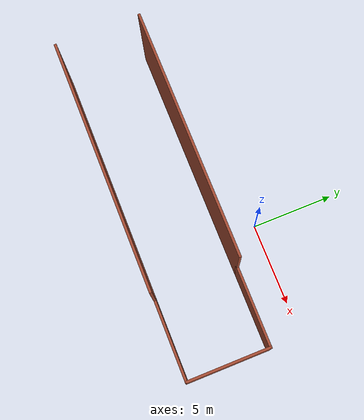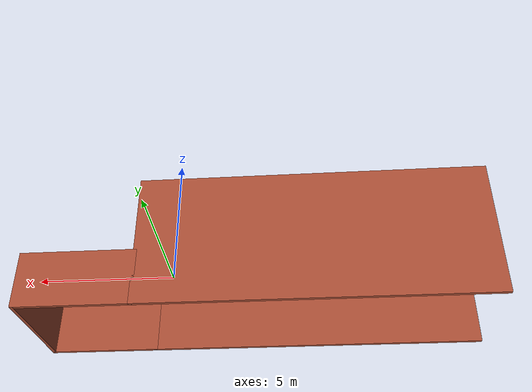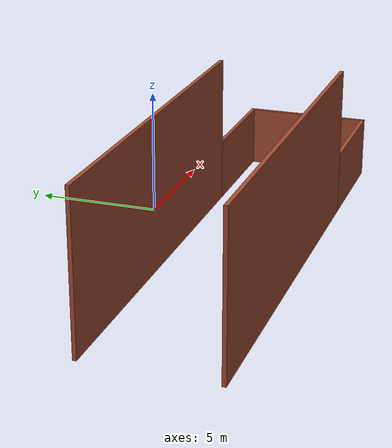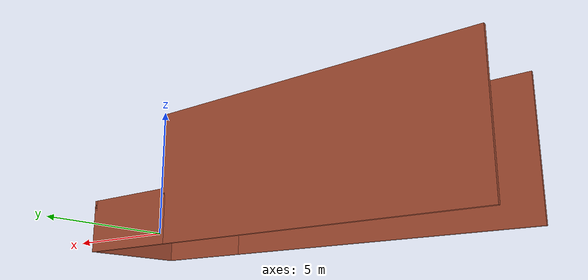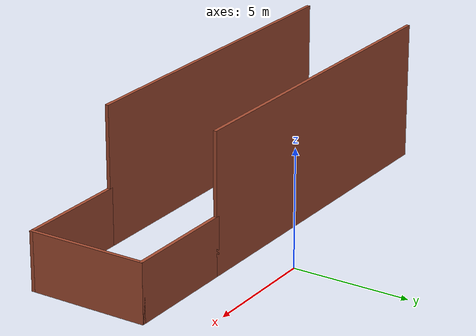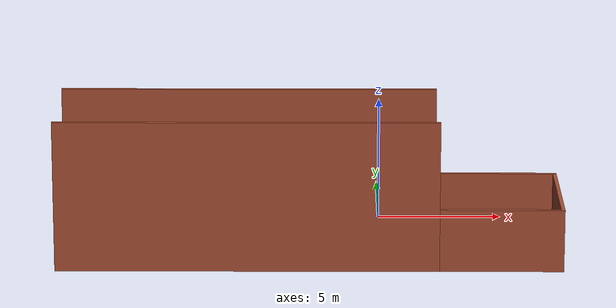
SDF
<?xml version='1.0'?>
<sdf version='1.6'>
  <model name='walls_flipkart'>
    <pose frame=''>-2.795 -4.644 0 0 -0 0</pose>
    <link name='Wall_1'>
      <collision name='Wall_1_Collision'>
        <geometry>
          <box>
            <size>15 0.15 6</size>
          </box>
        </geometry>
        <pose frame=''>0 0 3 0 -0 0</pose>
      </collision>
      <visual name='Wall_1_Visual'>
        <pose frame=''>0 0 3 0 -0 0</pose>
        <geometry>
          <box>
            <size>15 0.15 6</size>
          </box>
        </geometry>
        <material>
          <script>
            <uri>file://media/materials/scripts/gazebo.material</uri>
            <name>Gazebo/Bricks</name>
          </script>
          <ambient>1 1 1 1</ambient>
        </material>
        <meta>
          <layer>0</layer>
        </meta>
      </visual>
      <pose frame=''>-2.425 2.505 0 0 -0 0</pose>
    </link>
    <link name='Wall_12'>
      <collision name='Wall_12_Collision'>
        <geometry>
          <box>
            <size>5.16 0.15 2.5</size>
          </box>
        </geometry>
        <pose frame=''>0 0 1.25 0 -0 0</pose>
      </collision>
      <visual name='Wall_12_Visual'>
        <pose frame=''>0 0 1.25 0 -0 0</pose>
        <geometry>
          <box>
            <size>5.16 0.15 2.5</size>
          </box>
        </geometry>
        <material>
          <script>
            <uri>file://media/materials/scripts/gazebo.material</uri>
            <name>Gazebo/Bricks</name>
          </script>
          <ambient>1 1 1 1</ambient>
        </material>
        <meta>
          <layer>0</layer>
        </meta>
      </visual>
      <pose frame=''>9.85 -0 0 0 -0 -1.5708</pose>
    </link>
    <link name='Wall_14'>
      <collision name='Wall_14_Collision'>
        <geometry>
          <box>
            <size>5 0.15 2.5</size>
          </box>
        </geometry>
        <pose frame=''>0 0 1.25 0 -0 0</pose>
      </collision>
      <visual name='Wall_14_Visual'>
        <pose frame=''>0 0 1.25 0 -0 0</pose>
        <geometry>
          <box>
            <size>5 0.15 2.5</size>
          </box>
        </geometry>
        <material>
          <script>
            <uri>file://media/materials/scripts/gazebo.material</uri>
            <name>Gazebo/Bricks</name>
          </script>
          <ambient>1 1 1 1</ambient>
        </material>
        <meta>
          <layer>0</layer>
        </meta>
      </visual>
      <pose frame=''>7.425 -2.505 0 0 -0 3.14159</pose>
    </link>
    <link name='Wall_15'>
      <collision name='Wall_15_Collision'>
        <geometry>
          <box>
            <size>15 0.15 6</size>
          </box>
        </geometry>
        <pose frame=''>0 0 3 0 -0 0</pose>
      </collision>
      <visual name='Wall_15_Visual'>
        <pose frame=''>0 0 3 0 -0 0</pose>
        <geometry>
          <box>
            <size>15 0.15 6</size>
          </box>
        </geometry>
        <material>
          <script>
            <uri>file://media/materials/scripts/gazebo.material</uri>
            <name>Gazebo/Bricks</name>
          </script>
          <ambient>1 1 1 1</ambient>
        </material>
        <meta>
          <layer>0</layer>
        </meta>
      </visual>
      <pose frame=''>-2.425 -2.505 0 0 -0 3.14159</pose>
    </link>
    <link name='Wall_2'>
      <collision name='Wall_2_Collision'>
        <geometry>
          <box>
            <size>5 0.15 2.5</size>
          </box>
        </geometry>
        <pose frame=''>0 0 1.25 0 -0 0</pose>
      </collision>
      <visual name='Wall_2_Visual'>
        <pose frame=''>0 0 1.25 0 -0 0</pose>
        <geometry>
          <box>
            <size>5 0.15 2.5</size>
          </box>
        </geometry>
        <material>
          <script>
            <uri>file://media/materials/scripts/gazebo.material</uri>
            <name>Gazebo/Bricks</name>
          </script>
          <ambient>1 1 1 1</ambient>
        </material>
        <meta>
          <layer>0</layer>
        </meta>
      </visual>
      <pose frame=''>7.425 2.505 0 0 -0 0</pose>
    </link>
    <static>1</static>
  </model>
</sdf>
